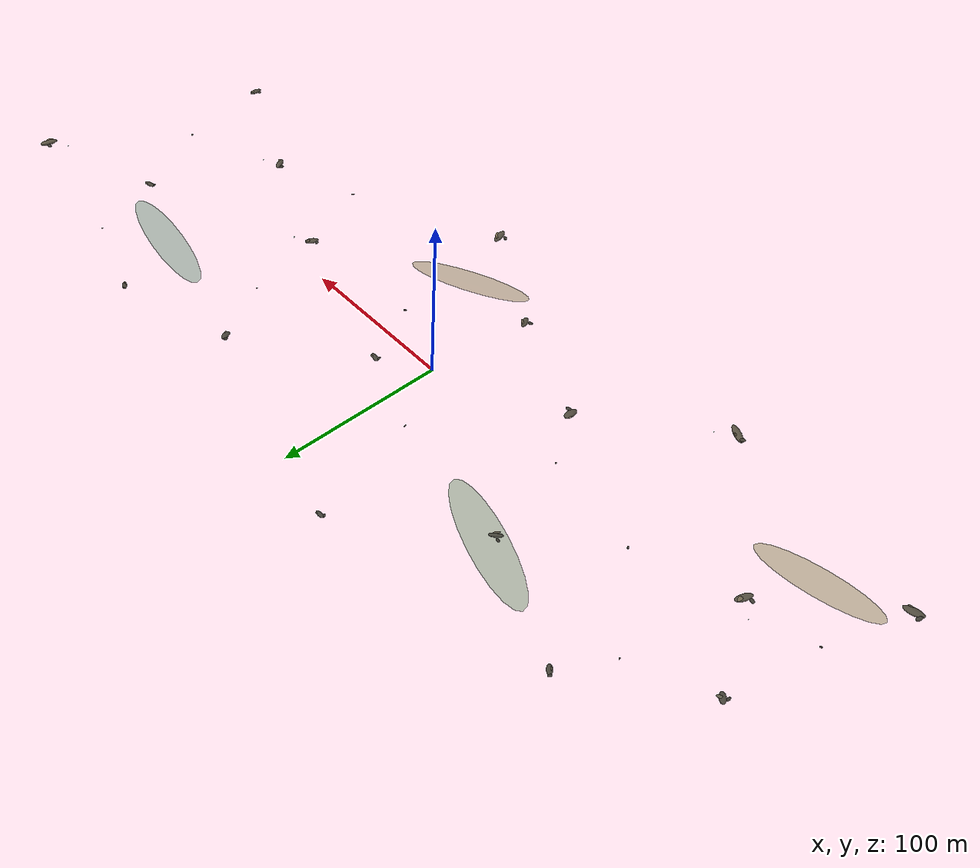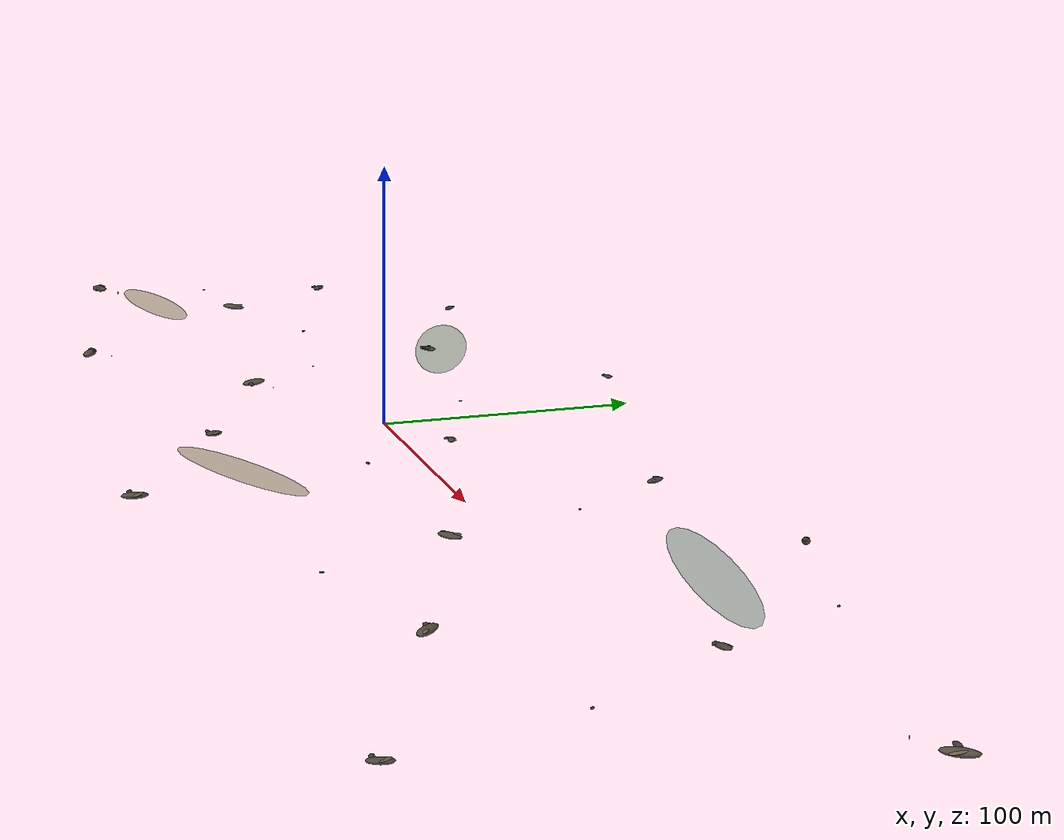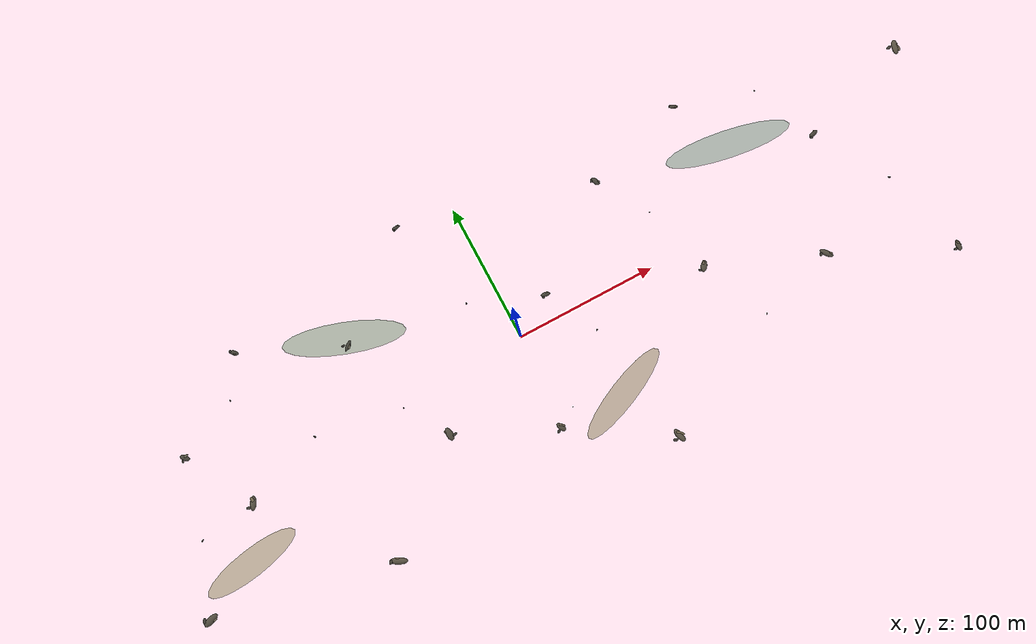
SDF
<?xml version="1.0"?>
<sdf version="1.10">
  <model name="random_reef_field">
    <static>true</static>
    <link name="reefs">
      <visual name="shallow_sand_bank_01"><pose>-222 -48 0.02 0 0 0.18</pose><geometry><ellipsoid><radii>34 9 0.035</radii></ellipsoid></geometry><transparency>0.45</transparency><material><ambient>0.36 0.34 0.24 0.55</ambient><diffuse>0.56 0.53 0.36 0.55</diffuse></material></visual>
      <visual name="shallow_sand_bank_02"><pose>-105 56 0.02 0 0 -0.34</pose><geometry><ellipsoid><radii>42 11 0.035</radii></ellipsoid></geometry><transparency>0.48</transparency><material><ambient>0.28 0.35 0.28 0.52</ambient><diffuse>0.42 0.56 0.42 0.52</diffuse></material></visual>
      <visual name="shallow_sand_bank_03"><pose>42 -66 0.02 0 0 0.42</pose><geometry><ellipsoid><radii>38 8.5 0.035</radii></ellipsoid></geometry><transparency>0.46</transparency><material><ambient>0.34 0.32 0.22 0.54</ambient><diffuse>0.54 0.50 0.34 0.54</diffuse></material></visual>
      <visual name="shallow_sand_bank_04"><pose>190 52 0.02 0 0 -0.16</pose><geometry><ellipsoid><radii>46 10 0.035</radii></ellipsoid></geometry><transparency>0.48</transparency><material><ambient>0.26 0.34 0.30 0.52</ambient><diffuse>0.40 0.55 0.46 0.52</diffuse></material></visual>

      <visual name="reef_01_base"><pose>-260 -68 0.48 0.08 -0.05 0.32</pose><geometry><ellipsoid><radii>5.4 2.4 1.15</radii></ellipsoid></geometry><material><ambient>0.14 0.13 0.11 1</ambient><diffuse>0.31 0.29 0.24 1</diffuse><specular>0.04 0.04 0.035 1</specular></material></visual>
      <visual name="reef_01_cap"><pose>-259.2 -68.5 1.02 0.16 0.02 -0.15</pose><geometry><ellipsoid><radii>3.1 1.25 0.42</radii></ellipsoid></geometry><material><ambient>0.20 0.19 0.15 1</ambient><diffuse>0.42 0.39 0.31 1</diffuse></material></visual>
      <visual name="reef_01_lump"><pose>-263.8 -66.6 0.55 -0.05 0.08 1.25</pose><geometry><ellipsoid><radii>2.0 1.1 0.7</radii></ellipsoid></geometry><material><ambient>0.11 0.11 0.10 1</ambient><diffuse>0.23 0.22 0.19 1</diffuse></material></visual>
      <collision name="reef_01_collision"><pose>-260 -68 0.52 0 0 0.32</pose><geometry><box><size>10.5 4.7 1.55</size></box></geometry></collision>

      <visual name="reef_02_base"><pose>-232 34 0.34 -0.10 0.05 -0.82</pose><geometry><ellipsoid><radii>3.4 1.7 0.82</radii></ellipsoid></geometry><material><ambient>0.12 0.12 0.105 1</ambient><diffuse>0.27 0.26 0.22 1</diffuse></material></visual>
      <visual name="reef_02_cap"><pose>-231.2 34.6 0.78 -0.02 0.11 0.4</pose><geometry><ellipsoid><radii>2.0 0.9 0.32</radii></ellipsoid></geometry><material><ambient>0.18 0.18 0.14 1</ambient><diffuse>0.36 0.35 0.28 1</diffuse></material></visual>
      <visual name="reef_02_lump"><pose>-234.1 32.5 0.38 0.07 -0.04 -1.6</pose><geometry><ellipsoid><radii>1.35 0.7 0.52</radii></ellipsoid></geometry><material><ambient>0.10 0.105 0.095 1</ambient><diffuse>0.22 0.21 0.18 1</diffuse></material></visual>
      <collision name="reef_02_collision"><pose>-232 34 0.38 0 0 -0.82</pose><geometry><box><size>6.6 3.2 1.15</size></box></geometry></collision>

      <visual name="reef_03_base"><pose>-205 -14 0.44 0.04 0.10 1.15</pose><geometry><ellipsoid><radii>4.8 2.0 1.05</radii></ellipsoid></geometry><material><ambient>0.15 0.14 0.12 1</ambient><diffuse>0.32 0.30 0.25 1</diffuse></material></visual>
      <visual name="reef_03_cap"><pose>-204.4 -12.6 0.98 0.12 -0.03 1.65</pose><geometry><ellipsoid><radii>2.8 1.2 0.38</radii></ellipsoid></geometry><material><ambient>0.22 0.20 0.16 1</ambient><diffuse>0.43 0.39 0.30 1</diffuse></material></visual>
      <visual name="reef_03_lump"><pose>-208.5 -15.5 0.52 -0.06 0.02 -0.3</pose><geometry><ellipsoid><radii>1.8 1.0 0.62</radii></ellipsoid></geometry><material><ambient>0.105 0.105 0.095 1</ambient><diffuse>0.24 0.23 0.20 1</diffuse></material></visual>
      <collision name="reef_03_collision"><pose>-205 -14 0.50 0 0 1.15</pose><geometry><box><size>9.2 4.0 1.45</size></box></geometry></collision>

      <visual name="reef_04_base"><pose>-174 82 0.28 -0.12 0.03 2.35</pose><geometry><ellipsoid><radii>3.0 1.55 0.72</radii></ellipsoid></geometry><material><ambient>0.13 0.13 0.115 1</ambient><diffuse>0.26 0.25 0.21 1</diffuse></material></visual>
      <visual name="reef_04_cap"><pose>-173.4 81.1 0.67 0.03 -0.09 2.7</pose><geometry><ellipsoid><radii>1.85 0.72 0.25</radii></ellipsoid></geometry><material><ambient>0.18 0.17 0.13 1</ambient><diffuse>0.37 0.34 0.27 1</diffuse></material></visual>
      <visual name="reef_04_lump"><pose>-176.2 84.0 0.33 0.09 0.03 -2.1</pose><geometry><ellipsoid><radii>1.15 0.68 0.42</radii></ellipsoid></geometry><material><ambient>0.10 0.105 0.09 1</ambient><diffuse>0.22 0.21 0.18 1</diffuse></material></visual>
      <collision name="reef_04_collision"><pose>-174 82 0.32 0 0 2.35</pose><geometry><box><size>5.8 3.0 1.0</size></box></geometry></collision>

      <visual name="reef_05_base"><pose>-138 -92 0.58 0.07 -0.06 -0.48</pose><geometry><ellipsoid><radii>6.1 2.2 1.32</radii></ellipsoid></geometry><material><ambient>0.16 0.15 0.125 1</ambient><diffuse>0.34 0.31 0.25 1</diffuse></material></visual>
      <visual name="reef_05_cap"><pose>-136.9 -92.4 1.20 0.10 0.08 -0.95</pose><geometry><ellipsoid><radii>3.5 1.2 0.42</radii></ellipsoid></geometry><material><ambient>0.23 0.20 0.15 1</ambient><diffuse>0.46 0.40 0.30 1</diffuse></material></visual>
      <visual name="reef_05_lump"><pose>-142.3 -90.2 0.63 -0.03 0.12 0.6</pose><geometry><ellipsoid><radii>2.1 1.15 0.78</radii></ellipsoid></geometry><material><ambient>0.115 0.11 0.10 1</ambient><diffuse>0.26 0.24 0.20 1</diffuse></material></visual>
      <collision name="reef_05_collision"><pose>-138 -92 0.62 0 0 -0.48</pose><geometry><box><size>11.8 4.2 1.8</size></box></geometry></collision>

      <visual name="reef_06_base"><pose>-105 50 0.36 0.11 0.02 0.72</pose><geometry><ellipsoid><radii>3.9 1.35 0.85</radii></ellipsoid></geometry><material><ambient>0.12 0.125 0.11 1</ambient><diffuse>0.25 0.25 0.21 1</diffuse></material></visual>
      <visual name="reef_06_cap"><pose>-104.3 49.2 0.80 0.03 0.08 1.05</pose><geometry><ellipsoid><radii>2.1 0.78 0.30</radii></ellipsoid></geometry><material><ambient>0.18 0.18 0.14 1</ambient><diffuse>0.37 0.35 0.28 1</diffuse></material></visual>
      <visual name="reef_06_lump"><pose>-107.8 51.4 0.40 0.06 -0.06 -0.2</pose><geometry><ellipsoid><radii>1.25 0.72 0.50</radii></ellipsoid></geometry><material><ambient>0.10 0.10 0.09 1</ambient><diffuse>0.22 0.21 0.18 1</diffuse></material></visual>
      <collision name="reef_06_collision"><pose>-105 50 0.40 0 0 0.72</pose><geometry><box><size>7.4 2.7 1.16</size></box></geometry></collision>

      <visual name="reef_07_base"><pose>-72 -35 0.50 -0.05 0.09 -1.52</pose><geometry><ellipsoid><radii>4.6 2.3 1.12</radii></ellipsoid></geometry><material><ambient>0.15 0.14 0.12 1</ambient><diffuse>0.31 0.29 0.24 1</diffuse></material></visual>
      <visual name="reef_07_cap"><pose>-72.8 -34.0 1.06 0.10 -0.03 -1.0</pose><geometry><ellipsoid><radii>2.7 1.15 0.38</radii></ellipsoid></geometry><material><ambient>0.21 0.19 0.15 1</ambient><diffuse>0.42 0.38 0.30 1</diffuse></material></visual>
      <visual name="reef_07_lump"><pose>-68.9 -36.8 0.58 -0.06 0.04 0.25</pose><geometry><ellipsoid><radii>1.7 0.9 0.65</radii></ellipsoid></geometry><material><ambient>0.11 0.11 0.10 1</ambient><diffuse>0.24 0.23 0.20 1</diffuse></material></visual>
      <collision name="reef_07_collision"><pose>-72 -35 0.55 0 0 -1.52</pose><geometry><box><size>8.8 4.5 1.55</size></box></geometry></collision>

      <visual name="reef_08_base"><pose>-40 108 0.24 0.08 -0.04 0.05</pose><geometry><ellipsoid><radii>2.8 1.25 0.62</radii></ellipsoid></geometry><material><ambient>0.13 0.13 0.115 1</ambient><diffuse>0.26 0.25 0.22 1</diffuse></material></visual>
      <visual name="reef_08_cap"><pose>-39.3 108.4 0.57 0.02 0.06 0.45</pose><geometry><ellipsoid><radii>1.55 0.68 0.24</radii></ellipsoid></geometry><material><ambient>0.18 0.17 0.14 1</ambient><diffuse>0.36 0.34 0.27 1</diffuse></material></visual>
      <visual name="reef_08_lump"><pose>-42.1 106.9 0.28 0.08 -0.06 -0.8</pose><geometry><ellipsoid><radii>1.05 0.58 0.39</radii></ellipsoid></geometry><material><ambient>0.10 0.10 0.09 1</ambient><diffuse>0.22 0.21 0.18 1</diffuse></material></visual>
      <collision name="reef_08_collision"><pose>-40 108 0.27 0 0 0.05</pose><geometry><box><size>5.4 2.5 0.86</size></box></geometry></collision>

      <visual name="reef_09_base"><pose>-5 -66 0.42 -0.03 0.08 2.02</pose><geometry><ellipsoid><radii>3.7 1.85 0.96</radii></ellipsoid></geometry><material><ambient>0.14 0.135 0.115 1</ambient><diffuse>0.30 0.28 0.23 1</diffuse></material></visual>
      <visual name="reef_09_cap"><pose>-4.2 -65.2 0.91 0.07 -0.04 2.48</pose><geometry><ellipsoid><radii>2.15 0.95 0.34</radii></ellipsoid></geometry><material><ambient>0.20 0.18 0.14 1</ambient><diffuse>0.40 0.36 0.29 1</diffuse></material></visual>
      <visual name="reef_09_lump"><pose>-7.7 -67.8 0.47 -0.07 0.05 0.4</pose><geometry><ellipsoid><radii>1.5 0.86 0.58</radii></ellipsoid></geometry><material><ambient>0.105 0.105 0.095 1</ambient><diffuse>0.23 0.22 0.19 1</diffuse></material></visual>
      <collision name="reef_09_collision"><pose>-5 -66 0.47 0 0 2.02</pose><geometry><box><size>7.2 3.6 1.34</size></box></geometry></collision>

      <visual name="reef_10_base"><pose>28 18 0.32 0.09 -0.03 -0.25</pose><geometry><ellipsoid><radii>3.2 1.45 0.76</radii></ellipsoid></geometry><material><ambient>0.13 0.13 0.115 1</ambient><diffuse>0.27 0.26 0.22 1</diffuse></material></visual>
      <visual name="reef_10_cap"><pose>28.7 18.5 0.71 0.06 0.07 0.20</pose><geometry><ellipsoid><radii>1.9 0.72 0.27</radii></ellipsoid></geometry><material><ambient>0.18 0.17 0.135 1</ambient><diffuse>0.36 0.34 0.27 1</diffuse></material></visual>
      <visual name="reef_10_lump"><pose>25.8 16.8 0.37 -0.05 0.08 -1.1</pose><geometry><ellipsoid><radii>1.15 0.70 0.45</radii></ellipsoid></geometry><material><ambient>0.10 0.10 0.09 1</ambient><diffuse>0.22 0.21 0.18 1</diffuse></material></visual>
      <collision name="reef_10_collision"><pose>28 18 0.36 0 0 -0.25</pose><geometry><box><size>6.2 2.8 1.05</size></box></geometry></collision>

      <visual name="reef_11_base"><pose>61 -108 0.54 -0.08 0.10 1.82</pose><geometry><ellipsoid><radii>5.2 2.1 1.20</radii></ellipsoid></geometry><material><ambient>0.15 0.14 0.12 1</ambient><diffuse>0.33 0.30 0.25 1</diffuse></material></visual>
      <visual name="reef_11_cap"><pose>62.1 -107.0 1.12 0.08 -0.02 2.34</pose><geometry><ellipsoid><radii>3.0 1.05 0.42</radii></ellipsoid></geometry><material><ambient>0.23 0.20 0.15 1</ambient><diffuse>0.46 0.40 0.30 1</diffuse></material></visual>
      <visual name="reef_11_lump"><pose>57.3 -109.4 0.60 0.03 0.09 -0.4</pose><geometry><ellipsoid><radii>1.75 1.0 0.70</radii></ellipsoid></geometry><material><ambient>0.11 0.11 0.10 1</ambient><diffuse>0.25 0.23 0.20 1</diffuse></material></visual>
      <collision name="reef_11_collision"><pose>61 -108 0.60 0 0 1.82</pose><geometry><box><size>10.0 4.1 1.65</size></box></geometry></collision>

      <visual name="reef_12_base"><pose>96 72 0.36 0.07 0.05 -1.18</pose><geometry><ellipsoid><radii>3.5 1.8 0.86</radii></ellipsoid></geometry><material><ambient>0.135 0.13 0.115 1</ambient><diffuse>0.28 0.27 0.23 1</diffuse></material></visual>
      <visual name="reef_12_cap"><pose>96.8 71.4 0.80 0.05 0.08 -0.7</pose><geometry><ellipsoid><radii>2.0 0.85 0.30</radii></ellipsoid></geometry><material><ambient>0.19 0.18 0.14 1</ambient><diffuse>0.38 0.35 0.28 1</diffuse></material></visual>
      <visual name="reef_12_lump"><pose>93.5 73.6 0.41 -0.06 0.06 1.1</pose><geometry><ellipsoid><radii>1.35 0.8 0.52</radii></ellipsoid></geometry><material><ambient>0.105 0.105 0.095 1</ambient><diffuse>0.23 0.22 0.19 1</diffuse></material></visual>
      <collision name="reef_12_collision"><pose>96 72 0.40 0 0 -1.18</pose><geometry><box><size>6.8 3.5 1.18</size></box></geometry></collision>

      <visual name="reef_13_base"><pose>132 -16 0.46 -0.04 0.09 0.95</pose><geometry><ellipsoid><radii>4.2 2.15 1.0</radii></ellipsoid></geometry><material><ambient>0.145 0.14 0.12 1</ambient><diffuse>0.31 0.29 0.24 1</diffuse></material></visual>
      <visual name="reef_13_cap"><pose>132.7 -14.8 0.96 0.08 0.02 1.35</pose><geometry><ellipsoid><radii>2.45 1.0 0.36</radii></ellipsoid></geometry><material><ambient>0.21 0.19 0.15 1</ambient><diffuse>0.42 0.38 0.30 1</diffuse></material></visual>
      <visual name="reef_13_lump"><pose>128.8 -17.5 0.52 -0.03 0.06 -0.65</pose><geometry><ellipsoid><radii>1.55 0.92 0.62</radii></ellipsoid></geometry><material><ambient>0.11 0.11 0.10 1</ambient><diffuse>0.24 0.23 0.20 1</diffuse></material></visual>
      <collision name="reef_13_collision"><pose>132 -16 0.50 0 0 0.95</pose><geometry><box><size>8.2 4.1 1.38</size></box></geometry></collision>

      <visual name="reef_14_base"><pose>170 94 0.30 0.10 -0.02 2.65</pose><geometry><ellipsoid><radii>3.1 1.38 0.70</radii></ellipsoid></geometry><material><ambient>0.13 0.125 0.11 1</ambient><diffuse>0.27 0.25 0.21 1</diffuse></material></visual>
      <visual name="reef_14_cap"><pose>170.5 93.2 0.66 0.02 0.08 3.0</pose><geometry><ellipsoid><radii>1.75 0.72 0.24</radii></ellipsoid></geometry><material><ambient>0.18 0.17 0.13 1</ambient><diffuse>0.36 0.33 0.26 1</diffuse></material></visual>
      <visual name="reef_14_lump"><pose>167.8 95.2 0.35 -0.04 0.07 -2.3</pose><geometry><ellipsoid><radii>1.1 0.66 0.40</radii></ellipsoid></geometry><material><ambient>0.10 0.10 0.09 1</ambient><diffuse>0.22 0.21 0.18 1</diffuse></material></visual>
      <collision name="reef_14_collision"><pose>170 94 0.34 0 0 2.65</pose><geometry><box><size>6.0 2.7 0.98</size></box></geometry></collision>

      <visual name="reef_15_base"><pose>210 -48 0.52 -0.06 0.04 -0.92</pose><geometry><ellipsoid><radii>4.9 2.0 1.18</radii></ellipsoid></geometry><material><ambient>0.15 0.14 0.12 1</ambient><diffuse>0.32 0.30 0.25 1</diffuse></material></visual>
      <visual name="reef_15_cap"><pose>211.0 -48.8 1.08 0.10 0.06 -0.5</pose><geometry><ellipsoid><radii>2.85 1.05 0.40</radii></ellipsoid></geometry><material><ambient>0.22 0.19 0.15 1</ambient><diffuse>0.44 0.39 0.30 1</diffuse></material></visual>
      <visual name="reef_15_lump"><pose>206.5 -46.7 0.58 -0.06 0.08 0.85</pose><geometry><ellipsoid><radii>1.85 0.95 0.68</radii></ellipsoid></geometry><material><ambient>0.11 0.11 0.10 1</ambient><diffuse>0.25 0.23 0.20 1</diffuse></material></visual>
      <collision name="reef_15_collision"><pose>210 -48 0.58 0 0 -0.92</pose><geometry><box><size>9.5 3.9 1.62</size></box></geometry></collision>

      <visual name="reef_16_base"><pose>246 30 0.34 0.05 -0.07 0.28</pose><geometry><ellipsoid><radii>3.6 1.55 0.82</radii></ellipsoid></geometry><material><ambient>0.13 0.13 0.11 1</ambient><diffuse>0.28 0.26 0.22 1</diffuse></material></visual>
      <visual name="reef_16_cap"><pose>246.6 30.7 0.77 0.07 0.04 0.72</pose><geometry><ellipsoid><radii>2.05 0.78 0.30</radii></ellipsoid></geometry><material><ambient>0.19 0.18 0.14 1</ambient><diffuse>0.38 0.35 0.28 1</diffuse></material></visual>
      <visual name="reef_16_lump"><pose>243.4 28.4 0.39 -0.03 0.08 -0.9</pose><geometry><ellipsoid><radii>1.25 0.72 0.50</radii></ellipsoid></geometry><material><ambient>0.105 0.105 0.095 1</ambient><diffuse>0.23 0.22 0.19 1</diffuse></material></visual>
      <collision name="reef_16_collision"><pose>246 30 0.38 0 0 0.28</pose><geometry><box><size>7.0 3.0 1.12</size></box></geometry></collision>

      <visual name="reef_17_base"><pose>292 -86 0.40 -0.08 0.06 1.42</pose><geometry><ellipsoid><radii>4.0 1.8 0.94</radii></ellipsoid></geometry><material><ambient>0.14 0.135 0.115 1</ambient><diffuse>0.30 0.28 0.23 1</diffuse></material></visual>
      <visual name="reef_17_cap"><pose>292.7 -85.0 0.88 0.06 -0.03 1.86</pose><geometry><ellipsoid><radii>2.2 0.92 0.34</radii></ellipsoid></geometry><material><ambient>0.20 0.18 0.14 1</ambient><diffuse>0.40 0.36 0.29 1</diffuse></material></visual>
      <visual name="reef_17_lump"><pose>289.1 -87.5 0.46 0.04 0.05 -0.2</pose><geometry><ellipsoid><radii>1.45 0.86 0.56</radii></ellipsoid></geometry><material><ambient>0.105 0.105 0.095 1</ambient><diffuse>0.23 0.22 0.19 1</diffuse></material></visual>
      <collision name="reef_17_collision"><pose>292 -86 0.45 0 0 1.42</pose><geometry><box><size>7.8 3.5 1.28</size></box></geometry></collision>

      <visual name="reef_18_base"><pose>330 58 0.56 0.05 -0.08 -1.95</pose><geometry><ellipsoid><radii>5.6 2.25 1.25</radii></ellipsoid></geometry><material><ambient>0.16 0.15 0.125 1</ambient><diffuse>0.34 0.31 0.25 1</diffuse></material></visual>
      <visual name="reef_18_cap"><pose>331.2 57.0 1.16 0.10 0.03 -1.5</pose><geometry><ellipsoid><radii>3.2 1.15 0.44</radii></ellipsoid></geometry><material><ambient>0.23 0.20 0.15 1</ambient><diffuse>0.46 0.40 0.30 1</diffuse></material></visual>
      <visual name="reef_18_lump"><pose>326.0 59.6 0.62 -0.04 0.08 0.1</pose><geometry><ellipsoid><radii>1.95 1.05 0.72</radii></ellipsoid></geometry><material><ambient>0.11 0.11 0.10 1</ambient><diffuse>0.25 0.23 0.20 1</diffuse></material></visual>
      <collision name="reef_18_collision"><pose>330 58 0.62 0 0 -1.95</pose><geometry><box><size>10.8 4.3 1.7</size></box></geometry></collision>

      <visual name="rubble_01"><pose>-244 -20 0.14 0.03 0.04 0.7</pose><geometry><ellipsoid><radii>0.8 0.45 0.28</radii></ellipsoid></geometry><material><ambient>0.105 0.10 0.09 1</ambient><diffuse>0.22 0.21 0.18 1</diffuse></material></visual>
      <visual name="rubble_02"><pose>-190 54 0.12 -0.02 0.05 -1.4</pose><geometry><ellipsoid><radii>0.65 0.38 0.24</radii></ellipsoid></geometry><material><ambient>0.115 0.11 0.10 1</ambient><diffuse>0.24 0.23 0.19 1</diffuse></material></visual>
      <visual name="rubble_03"><pose>-151 6 0.16 0.04 -0.03 2.1</pose><geometry><ellipsoid><radii>0.95 0.52 0.32</radii></ellipsoid></geometry><material><ambient>0.11 0.105 0.095 1</ambient><diffuse>0.23 0.22 0.19 1</diffuse></material></visual>
      <visual name="rubble_04"><pose>-91 -5 0.10 0.05 0.02 -0.8</pose><geometry><ellipsoid><radii>0.55 0.34 0.20</radii></ellipsoid></geometry><material><ambient>0.10 0.10 0.09 1</ambient><diffuse>0.21 0.20 0.17 1</diffuse></material></visual>
      <visual name="rubble_05"><pose>-22 38 0.13 -0.03 0.06 1.8</pose><geometry><ellipsoid><radii>0.74 0.40 0.26</radii></ellipsoid></geometry><material><ambient>0.11 0.105 0.095 1</ambient><diffuse>0.23 0.22 0.19 1</diffuse></material></visual>
      <visual name="rubble_06"><pose>47 -20 0.15 0.04 -0.02 -2.4</pose><geometry><ellipsoid><radii>0.9 0.48 0.30</radii></ellipsoid></geometry><material><ambient>0.10 0.10 0.09 1</ambient><diffuse>0.22 0.21 0.18 1</diffuse></material></visual>
      <visual name="rubble_07"><pose>118 35 0.11 -0.02 0.05 0.3</pose><geometry><ellipsoid><radii>0.58 0.36 0.22</radii></ellipsoid></geometry><material><ambient>0.105 0.10 0.09 1</ambient><diffuse>0.22 0.21 0.18 1</diffuse></material></visual>
      <visual name="rubble_08"><pose>153 -65 0.14 0.06 -0.03 1.2</pose><geometry><ellipsoid><radii>0.82 0.42 0.28</radii></ellipsoid></geometry><material><ambient>0.11 0.105 0.095 1</ambient><diffuse>0.23 0.22 0.19 1</diffuse></material></visual>
      <visual name="rubble_09"><pose>226 77 0.13 -0.05 0.04 -1.1</pose><geometry><ellipsoid><radii>0.72 0.44 0.25</radii></ellipsoid></geometry><material><ambient>0.105 0.10 0.09 1</ambient><diffuse>0.22 0.21 0.18 1</diffuse></material></visual>
      <visual name="rubble_10"><pose>276 -22 0.16 0.03 0.06 2.5</pose><geometry><ellipsoid><radii>0.96 0.50 0.31</radii></ellipsoid></geometry><material><ambient>0.11 0.105 0.095 1</ambient><diffuse>0.23 0.22 0.19 1</diffuse></material></visual>

      <visual name="kelp_01"><pose>-248 -61 0.48 0.05 0.09 0.2</pose><geometry><cylinder><radius>0.055</radius><length>0.96</length></cylinder></geometry><material><ambient>0.03 0.16 0.08 1</ambient><diffuse>0.05 0.28 0.13 1</diffuse></material></visual>
      <visual name="kelp_02"><pose>-214 -6 0.42 -0.08 0.04 -0.4</pose><geometry><cylinder><radius>0.045</radius><length>0.84</length></cylinder></geometry><material><ambient>0.03 0.14 0.07 1</ambient><diffuse>0.05 0.25 0.12 1</diffuse></material></visual>
      <visual name="kelp_03"><pose>-129 -84 0.55 0.06 -0.07 0.8</pose><geometry><cylinder><radius>0.055</radius><length>1.10</length></cylinder></geometry><material><ambient>0.03 0.16 0.08 1</ambient><diffuse>0.05 0.28 0.13 1</diffuse></material></visual>
      <visual name="kelp_04"><pose>-63 -29 0.47 -0.04 0.08 -1.2</pose><geometry><cylinder><radius>0.045</radius><length>0.94</length></cylinder></geometry><material><ambient>0.03 0.13 0.07 1</ambient><diffuse>0.05 0.24 0.12 1</diffuse></material></visual>
      <visual name="kelp_05"><pose>8 -58 0.42 0.05 0.05 0.6</pose><geometry><cylinder><radius>0.05</radius><length>0.84</length></cylinder></geometry><material><ambient>0.03 0.16 0.08 1</ambient><diffuse>0.05 0.28 0.13 1</diffuse></material></visual>
      <visual name="kelp_06"><pose>70 -101 0.52 -0.06 0.04 -0.5</pose><geometry><cylinder><radius>0.055</radius><length>1.04</length></cylinder></geometry><material><ambient>0.03 0.14 0.07 1</ambient><diffuse>0.05 0.25 0.12 1</diffuse></material></visual>
      <visual name="kelp_07"><pose>142 -10 0.42 0.04 -0.05 1.5</pose><geometry><cylinder><radius>0.045</radius><length>0.86</length></cylinder></geometry><material><ambient>0.03 0.13 0.07 1</ambient><diffuse>0.05 0.24 0.12 1</diffuse></material></visual>
      <visual name="kelp_08"><pose>220 -42 0.54 -0.04 0.06 -0.9</pose><geometry><cylinder><radius>0.055</radius><length>1.08</length></cylinder></geometry><material><ambient>0.03 0.16 0.08 1</ambient><diffuse>0.05 0.28 0.13 1</diffuse></material></visual>
      <visual name="kelp_09"><pose>318 50 0.58 0.06 0.04 0.4</pose><geometry><cylinder><radius>0.055</radius><length>1.12</length></cylinder></geometry><material><ambient>0.03 0.14 0.07 1</ambient><diffuse>0.05 0.25 0.12 1</diffuse></material></visual>
    </link>
  </model>
</sdf>
